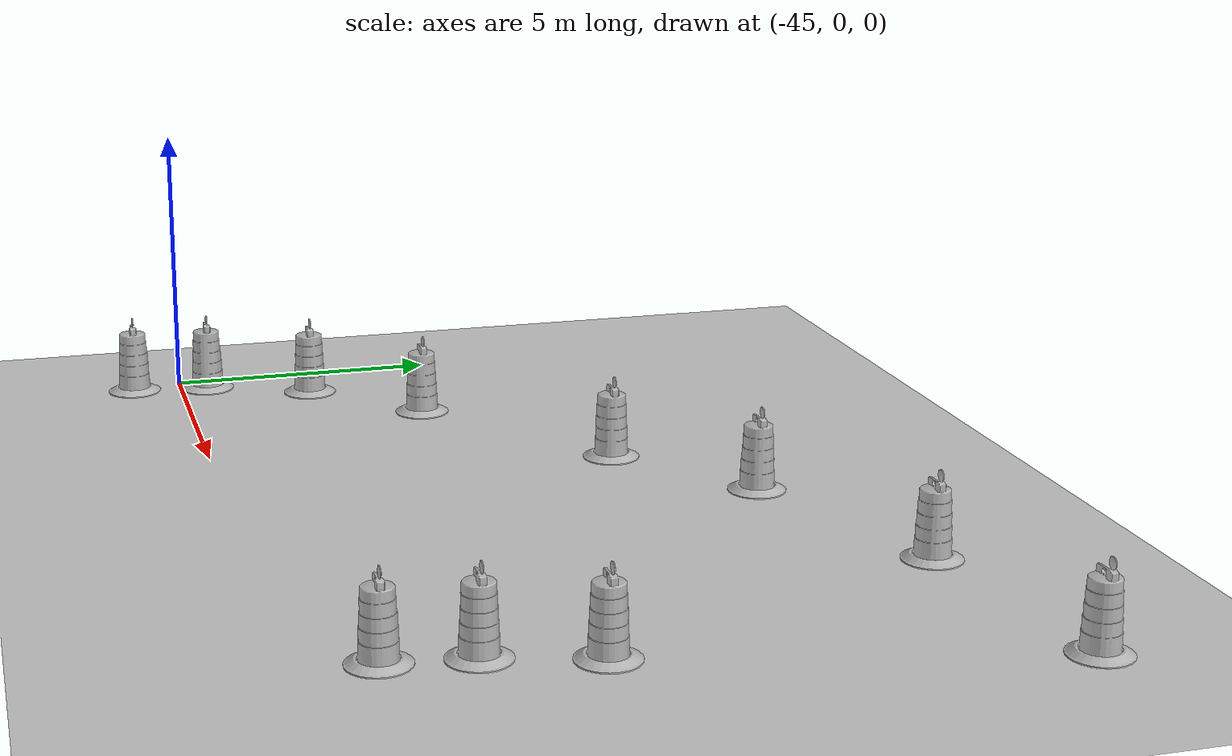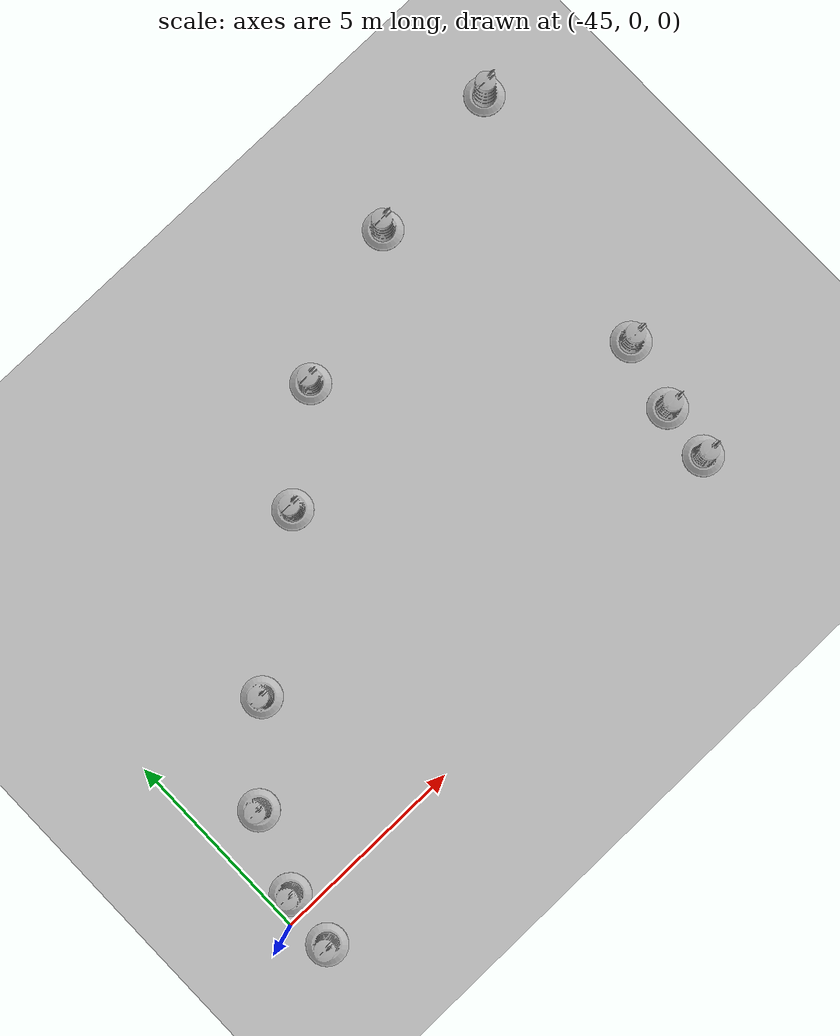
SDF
<sdf version="1.6">
 <world name="default">
  <model name="ground_plane">
   <static>1</static>
   <link name="link">
    <collision name="collision">
     <geometry><plane><normal>0 0 1</normal><size>100 100</size></plane></geometry>
     <surface>
      <contact><collide_bitmask>65535</collide_bitmask></contact>
      <friction><ode><mu>100</mu><mu2>50</mu2></ode></friction>
     </surface>
    </collision>
    <visual name="visual">
     <cast_shadows>0</cast_shadows>
     <geometry><plane><normal>0 0 1</normal><size>100 100</size></plane></geometry>
     <material>
      <script><uri>file://media/materials/scripts/gazebo.material</uri><name>Gazebo/Grey</name></script>
     </material>
    </visual>
   </link>
  </model>
  <model name="Construction Barrel_0_clone_74">
   <link name="link">
    <inertial>
     <pose>0 0 0.4 0 -0 0</pose>
     <mass>500</mass>
     <inertia><ixx>51.2096</ixx><iyy>51.2096</iyy><izz>25</izz><ixy>0</ixy><ixz>0</ixz><iyz>0</iyz></inertia>
    </inertial>
    <collision name="collision">
     <geometry><mesh><uri>model://construction_barrel/meshes/construction_barrel.dae</uri></mesh></geometry>
    </collision>
    <visual name="visual">
     <geometry><mesh><uri>model://construction_barrel/meshes/construction_barrel.dae</uri></mesh></geometry>
    </visual>
   </link>
   <pose>-27.9465 11.1381 -2e-06 6e-06 -4e-06 -4.3e-05</pose>
  </model>
  <model name="Construction Barrel_0_clone_76">
   <link name="link">
    <inertial>
     <pose>0 0 0.4 0 -0 0</pose>
     <mass>500</mass>
     <inertia><ixx>51.2096</ixx><iyy>51.2096</iyy><izz>25</izz><ixy>0</ixy><ixz>0</ixz><iyz>0</iyz></inertia>
    </inertial>
    <collision name="collision">
     <geometry><mesh><uri>model://construction_barrel/meshes/construction_barrel.dae</uri></mesh></geometry>
    </collision>
    <visual name="visual">
     <geometry><mesh><uri>model://construction_barrel/meshes/construction_barrel.dae</uri></mesh></geometry>
    </visual>
   </link>
   <pose>-29.6094 4.34483 -2e-06 6e-06 -4e-06 -4.3e-05</pose>
  </model>
  <model name="Construction Barrel_0_clone_77">
   <link name="link">
    <inertial>
     <pose>0 0 0.4 0 -0 0</pose>
     <mass>500</mass>
     <inertia><ixx>51.2096</ixx><iyy>51.2096</iyy><izz>25</izz><ixy>0</ixy><ixz>0</ixz><iyz>0</iyz></inertia>
    </inertial>
    <collision name="collision">
     <geometry><mesh><uri>model://construction_barrel/meshes/construction_barrel.dae</uri></mesh></geometry>
    </collision>
    <visual name="visual">
     <geometry><mesh><uri>model://construction_barrel/meshes/construction_barrel.dae</uri></mesh></geometry>
    </visual>
   </link>
   <pose>-30.1074 2.5903 -2e-06 6e-06 -4e-06 -1.5e-05</pose>
  </model>
  <model name="Construction Barrel_0_clone_78">
   <link name="link">
    <inertial>
     <pose>0 0 0.4 0 -0 0</pose>
     <mass>500</mass>
     <inertia><ixx>51.2096</ixx><iyy>51.2096</iyy><izz>25</izz><ixy>0</ixy><ixz>0</ixz><iyz>0</iyz></inertia>
    </inertial>
    <collision name="collision">
     <geometry><mesh><uri>model://construction_barrel/meshes/construction_barrel.dae</uri></mesh></geometry>
    </collision>
    <visual name="visual">
     <geometry><mesh><uri>model://construction_barrel/meshes/construction_barrel.dae</uri></mesh></geometry>
    </visual>
   </link>
   <pose>-30.2957 1.18096 -2e-06 6e-06 -4e-06 -1.5e-05</pose>
  </model>
  <model name="Construction Barrel_0_clone_79">
   <link name="link">
    <inertial>
     <pose>0 0 0.4 0 -0 0</pose>
     <mass>500</mass>
     <inertia><ixx>51.2096</ixx><iyy>51.2096</iyy><izz>25</izz><ixy>0</ixy><ixz>0</ixz><iyz>0</iyz></inertia>
    </inertial>
    <collision name="collision">
     <geometry><mesh><uri>model://construction_barrel/meshes/construction_barrel.dae</uri></mesh></geometry>
    </collision>
    <visual name="visual">
     <geometry><mesh><uri>model://construction_barrel/meshes/construction_barrel.dae</uri></mesh></geometry>
    </visual>
   </link>
   <pose>-32.0166 10.4478 -2e-06 6e-06 -4e-06 -1.5e-05</pose>
  </model>
  <model name="Construction Barrel_0_clone_80">
   <link name="link">
    <inertial>
     <pose>0 0 0.4 0 -0 0</pose>
     <mass>500</mass>
     <inertia><ixx>51.2096</ixx><iyy>51.2096</iyy><izz>25</izz><ixy>0</ixy><ixz>0</ixz><iyz>0</iyz></inertia>
    </inertial>
    <collision name="collision">
     <geometry><mesh><uri>model://construction_barrel/meshes/construction_barrel.dae</uri></mesh></geometry>
    </collision>
    <visual name="visual">
     <geometry><mesh><uri>model://construction_barrel/meshes/construction_barrel.dae</uri></mesh></geometry>
    </visual>
   </link>
   <pose>-35.8588 8.94268 -2e-06 6e-06 -4e-06 -1.5e-05</pose>
  </model>
  <model name="Construction Barrel_0_clone_81">
   <link name="link">
    <inertial>
     <pose>0 0 0.4 0 -0 0</pose>
     <mass>500</mass>
     <inertia><ixx>51.2096</ixx><iyy>51.2096</iyy><izz>25</izz><ixy>0</ixy><ixz>0</ixz><iyz>0</iyz></inertia>
    </inertial>
    <collision name="collision">
     <geometry><mesh><uri>model://construction_barrel/meshes/construction_barrel.dae</uri></mesh></geometry>
    </collision>
    <visual name="visual">
     <geometry><mesh><uri>model://construction_barrel/meshes/construction_barrel.dae</uri></mesh></geometry>
    </visual>
   </link>
   <pose>-38.2561 7.04048 -2e-06 6e-06 -4e-06 -4.3e-05</pose>
  </model>
  <model name="Construction Barrel_0_clone_82">
   <link name="link">
    <inertial>
     <pose>0 0 0.4 0 -0 0</pose>
     <mass>500</mass>
     <inertia><ixx>51.2096</ixx><iyy>51.2096</iyy><izz>25</izz><ixy>0</ixy><ixz>0</ixz><iyz>0</iyz></inertia>
    </inertial>
    <collision name="collision">
     <geometry><mesh><uri>model://construction_barrel/meshes/construction_barrel.dae</uri></mesh></geometry>
    </collision>
    <visual name="visual">
     <geometry><mesh><uri>model://construction_barrel/meshes/construction_barrel.dae</uri></mesh></geometry>
    </visual>
   </link>
   <pose>-41.8406 4.32048 -2e-06 6e-06 -4e-06 -1.5e-05</pose>
  </model>
  <model name="Construction Barrel_0_clone_83">
   <link name="link">
    <inertial>
     <pose>0 0 0.4 0 -0 0</pose>
     <mass>500</mass>
     <inertia><ixx>51.2096</ixx><iyy>51.2096</iyy><izz>25</izz><ixy>0</ixy><ixz>0</ixz><iyz>0</iyz></inertia>
    </inertial>
    <collision name="collision">
     <geometry><mesh><uri>model://construction_barrel/meshes/construction_barrel.dae</uri></mesh></geometry>
    </collision>
    <visual name="visual">
     <geometry><mesh><uri>model://construction_barrel/meshes/construction_barrel.dae</uri></mesh></geometry>
    </visual>
   </link>
   <pose>-43.7074 2.44948 -2e-06 6e-06 -4e-06 -4.3e-05</pose>
  </model>
  <model name="Construction Barrel_0_clone_84">
   <link name="link">
    <inertial>
     <pose>0 0 0.4 0 -0 0</pose>
     <mass>500</mass>
     <inertia><ixx>51.2096</ixx><iyy>51.2096</iyy><izz>25</izz><ixy>0</ixy><ixz>0</ixz><iyz>0</iyz></inertia>
    </inertial>
    <collision name="collision">
     <geometry><mesh><uri>model://construction_barrel/meshes/construction_barrel.dae</uri></mesh></geometry>
    </collision>
    <visual name="visual">
     <geometry><mesh><uri>model://construction_barrel/meshes/construction_barrel.dae</uri></mesh></geometry>
    </visual>
   </link>
   <pose>-44.5146 0.522356 -2e-06 6e-06 -4e-06 -1.5e-05</pose>
  </model>
  <model name="Construction Barrel_0_clone_85">
   <link name="link">
    <inertial>
     <pose>0 0 0.4 0 -0 0</pose>
     <mass>500</mass>
     <inertia><ixx>51.2096</ixx><iyy>51.2096</iyy><izz>25</izz><ixy>0</ixy><ixz>0</ixz><iyz>0</iyz></inertia>
    </inertial>
    <collision name="collision">
     <geometry><mesh><uri>model://construction_barrel/meshes/construction_barrel.dae</uri></mesh></geometry>
    </collision>
    <visual name="visual">
     <geometry><mesh><uri>model://construction_barrel/meshes/construction_barrel.dae</uri></mesh></geometry>
    </visual>
   </link>
   <pose>-44.6931 -0.907164 -2e-06 6e-06 -4e-06 -1.5e-05</pose>
  </model>
 </world>
</sdf>
